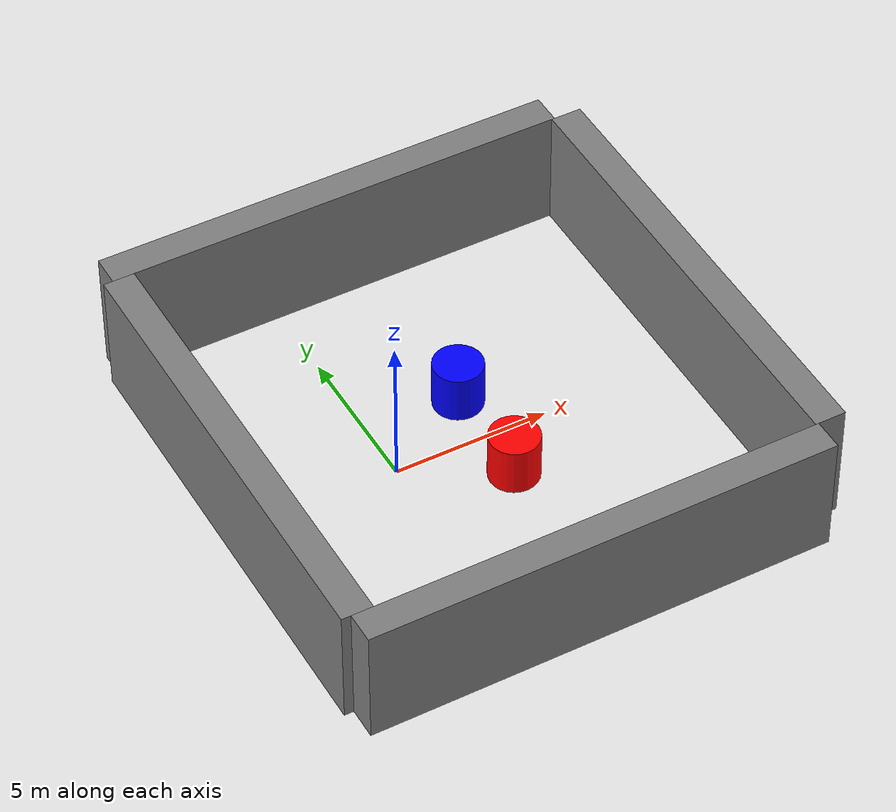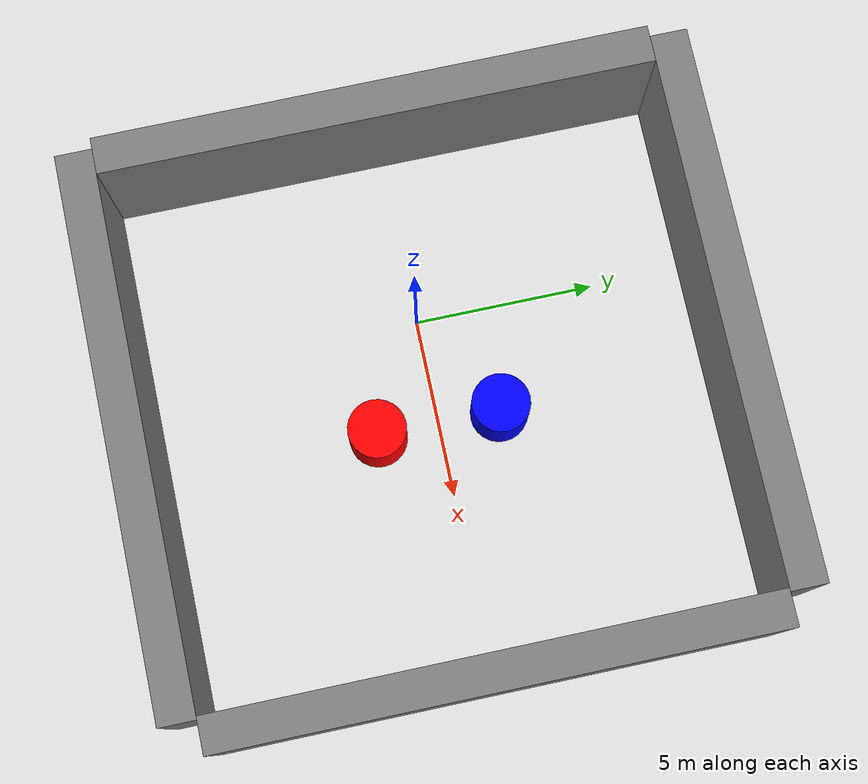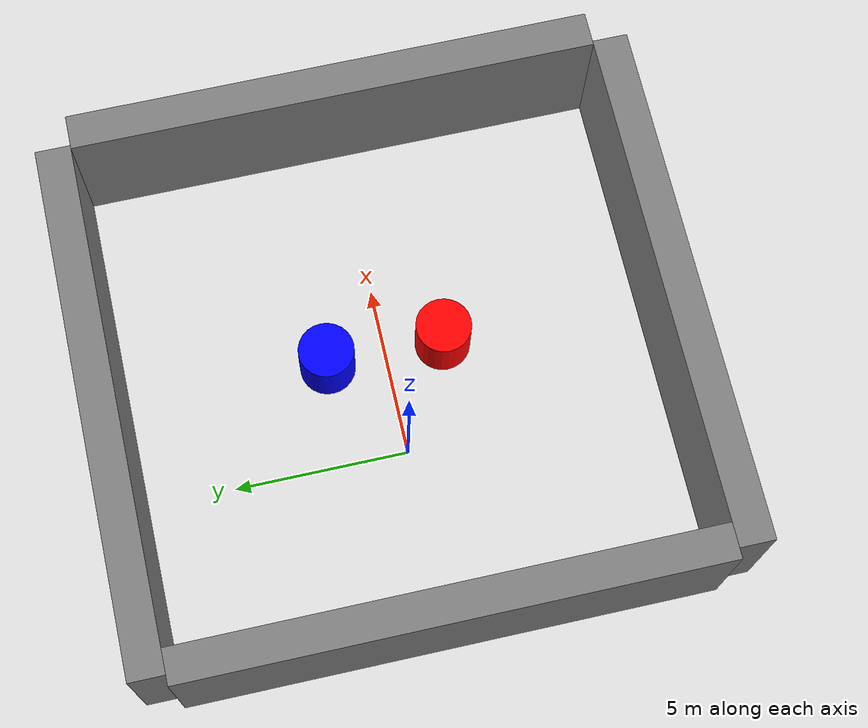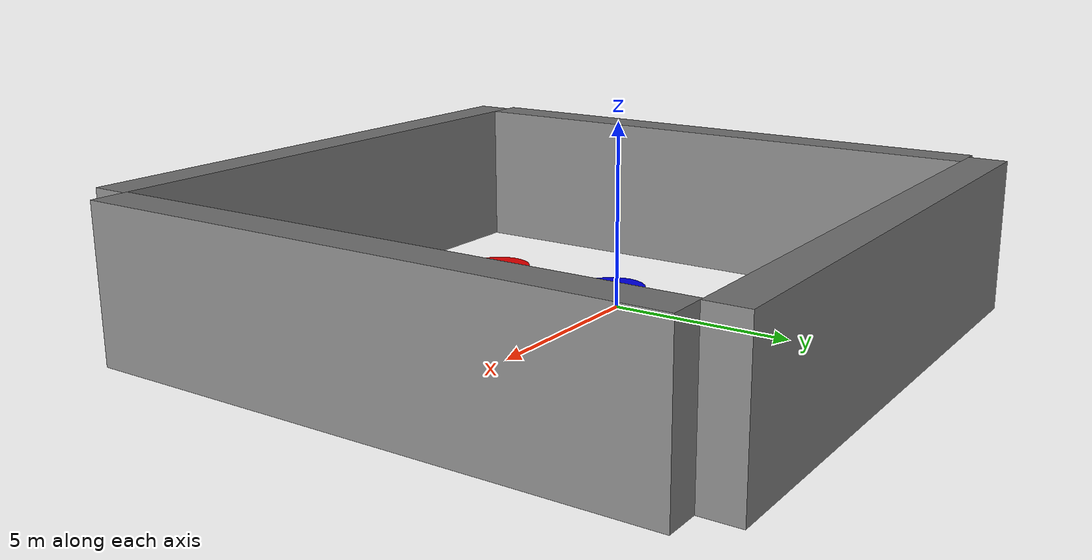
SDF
<?xml version="1.0" ?>
<sdf version='1.10'>
  <model name="Cenario2">
    <static>true</static>
    <pose>0 0 0 0 0 0</pose>

    <!-- Cilindro Vermelho -->
    <link name='cilindro_vermelho'>
      <pose>3 -1.7 0.8 0 0 0</pose>
      <collision name='collision_cilindro_vermelho'>
        <geometry>
          <cylinder>
            <radius>0.8</radius>
            <length>1.6</length>
          </cylinder>
        </geometry>
      </collision>
      <visual name='visual_cilindro_vermelho'>
        <geometry>
          <cylinder>
            <radius>0.8</radius>
            <length>1.6</length>
          </cylinder>
        </geometry>
        <material>
          <ambient>1 0 0 1</ambient>
          <diffuse>1 0 0 1</diffuse>
          <specular>0.3 0.3 0.3 1</specular>
        </material>
      </visual>
    </link>

    <!-- Cilindro Azul -->
    <link name='cilindro_azul'>
      <pose>3 1.7 0.8 0 0 0</pose>
      <collision name='collision_cilindro_azul'>
        <geometry>
          <cylinder>
            <radius>0.8</radius>
            <length>1.6</length>
          </cylinder>
        </geometry>
      </collision>
      <visual name='visual_cilindro_azul'>
        <geometry>
          <cylinder>
            <radius>0.8</radius>
            <length>1.6</length>
          </cylinder>
        </geometry>
        <material>
          <ambient>0 0 1 1</ambient>
          <diffuse>0 0 1 1</diffuse>
          <specular>0.3 0.3 0.3 1</specular>
        </material>
      </visual>
    </link>

    <!-- Parede Norte -->
    <link name='parede_norte'>
      <pose>2.1 8.0 2 0 0 0</pose>
      <collision name='collision_parede_norte'>
        <geometry>
          <box>
            <size>15.0 1 4</size>
          </box>
        </geometry>
      </collision>
      <visual name='visual_parede_norte'>
        <geometry>
          <box>
            <size>15.0 1 4</size>
          </box>
        </geometry>
        <material>
          <ambient>0.5 0.5 0.5 1</ambient>
          <diffuse>0.5 0.5 0.5 1</diffuse>
          <specular>0.2 0.2 0.2 1</specular>
        </material>
      </visual>
    </link>

    <!-- Parede Sul -->
    <link name='parede_sul'>
      <pose>2.1 -8.0 2 0 0 0</pose>
      <collision name='collision_parede_sul'>
        <geometry>
          <box>
            <size>15.0 1 4</size>
          </box>
        </geometry>
      </collision>
      <visual name='visual_parede_sul'>
        <geometry>
          <box>
            <size>15.0 1 4</size>
          </box>
        </geometry>
        <material>
          <ambient>0.5 0.5 0.5 1</ambient>
          <diffuse>0.5 0.5 0.5 1</diffuse>
          <specular>0.2 0.2 0.2 1</specular>
        </material>
      </visual>
    </link>

    <!-- Parede Leste -->
    <link name='parede_leste'>
      <pose>10.0 0 2 0 0 0</pose>
      <collision name='collision_parede_leste'>
        <geometry>
          <box>
            <size>1 15.0 4</size>
          </box>
        </geometry>
      </collision>
      <visual name='visual_parede_leste'>
        <geometry>
          <box>
            <size>1 15.0 4</size>
          </box>
        </geometry>
        <material>
          <ambient>0.5 0.5 0.5 1</ambient>
          <diffuse>0.5 0.5 0.5 1</diffuse>
          <specular>0.2 0.2 0.2 1</specular>
        </material>
      </visual>
    </link>

    <!-- Parede Oeste -->
    <link name='parede_oeste'>
      <pose>-5.2 0 2 0 0 0</pose>
      <collision name='collision_parede_oeste'>
        <geometry>
          <box>
            <size>1 15.0 4</size>
          </box>
        </geometry>
      </collision>
      <visual name='visual_parede_oeste'>
        <geometry>
          <box>
            <size>1 15.0 4</size>
          </box>
        </geometry>
        <material>
          <ambient>0.5 0.5 0.5 1</ambient>
          <diffuse>0.5 0.5 0.5 1</diffuse>
          <specular>0.2 0.2 0.2 1</specular>
        </material>
      </visual>
    </link>

  </model>
</sdf>
